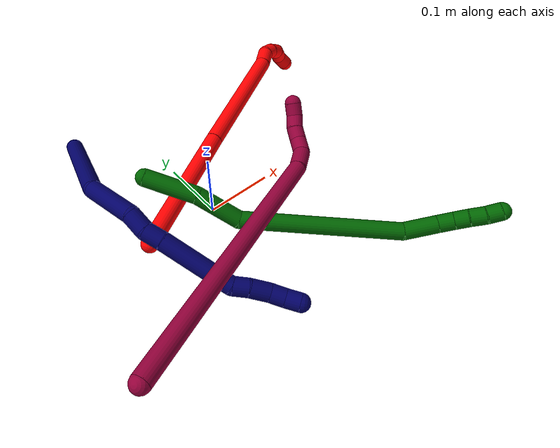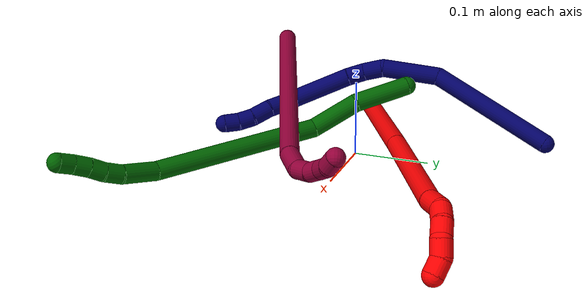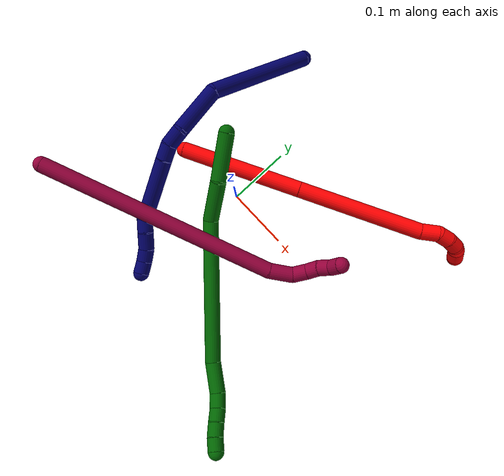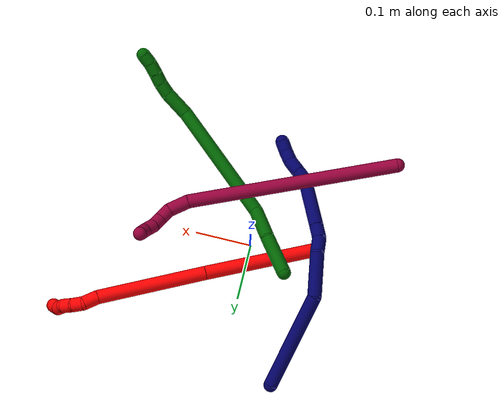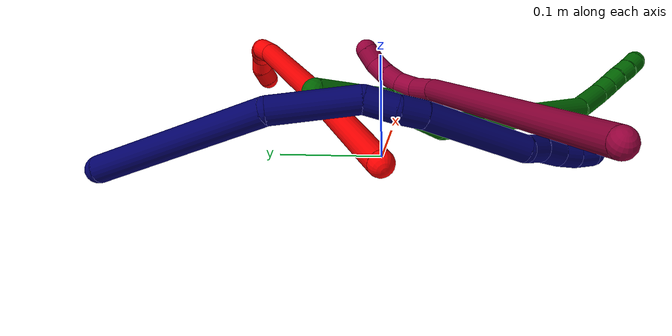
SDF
<sdf version="1.7">
 <world name="default">
  <model name="photoneo_s_sensor">
   <static>1</static>
   <pose>0 0 2 1.57079 1.57079 3.14159</pose>
   <link name="link">
    <inertial><mass>0.1</mass></inertial>
    <sensor name="sensor" type="depth">
     <update_rate>30</update_rate>
     <camera>
      <horizontal_fov>1.22</horizontal_fov>
      <image><width>1920</width><height>1200</height><format>B8G8R8</format></image>
      <clip><near>0.1</near><far>4</far></clip>
      <depth_camera><output>points</output></depth_camera>
     </camera>
     <plugin name="camera_plugin" filename="libgazebo_ros_depth_camera.so">
      <baseline>0.2</baseline>
      <alwaysOn>1</alwaysOn>
      <updateRate>0.0</updateRate>
      <cameraName>camera_ir</cameraName>
      <imageTopicName>/camera/color/image_raw</imageTopicName>
      <cameraInfoTopicName>/camera/color/camera_info</cameraInfoTopicName>
      <depthImageTopicName>/camera/depth/image_raw</depthImageTopicName>
      <depthImageCameraInfoTopicName>/camera/depth/camera_info</depthImageCameraInfoTopicName>
      <pointCloudTopicName>/camera/depth/points</pointCloudTopicName>
      <frameName>fr_optical</frameName>
      <pointCloudCutoff>0.1</pointCloudCutoff>
      <pointCloudCutoffMax>2.0</pointCloudCutoffMax>
      <distortionK1>0</distortionK1>
      <distortionK2>0</distortionK2>
      <distortionK3>0</distortionK3>
      <distortionT1>0</distortionT1>
      <distortionT2>0</distortionT2>
      <CxPrime>0</CxPrime>
      <Cx>0</Cx>
      <Cy>0</Cy>
      <focalLength>0</focalLength>
      <hackBaseline>0</hackBaseline>
     </plugin>
    </sensor>
   </link>
  </model>
  <model name="2">
   <static>0</static>
   <link name="2">
    <collision name="collision-cylinder-e_1_1_4">
     <pose>0.022266 0.009698 0.095081 -0.101648 0.228883 -0.011694</pose>
     <geometry><cylinder><radius>0.0125</radius><length>0.196268</length></cylinder></geometry>
     <surface>
      <friction><ode><mu>1.16</mu><mu2>1.16</mu2><slip1>0</slip1><slip2>0</slip2></ode></friction>
      <contact><ode><kp>1e+06</kp><kd>1</kd><max_vel>0</max_vel><min_depth>0.001</min_depth></ode></contact>
     </surface>
    </collision>
    <visual name="visual-cylinder-e_1_1_4">
     <pose>0.022266 0.009698 0.095081 -0.101648 0.228883 -0.011694</pose>
     <geometry><cylinder><radius>0.0125</radius><length>0.196268</length></cylinder></geometry>
     <material><ambient>1 0 0 1</ambient></material>
    </visual>
    <collision name="collision-cylinder-e_2_4_5">
     <pose>0.069897 0.030941 0.283435 -0.12314 0.263616 -0.016346</pose>
     <geometry><cylinder><radius>0.0125</radius><length>0.194695</length></cylinder></geometry>
     <surface>
      <friction><ode><mu>1.16</mu><mu2>1.16</mu2><slip1>0</slip1><slip2>0</slip2></ode></friction>
      <contact><ode><kp>1e+06</kp><kd>1</kd><max_vel>0</max_vel><min_depth>0.001</min_depth></ode></contact>
     </surface>
    </collision>
    <visual name="visual-cylinder-e_2_4_5">
     <pose>0.069897 0.030941 0.283435 -0.12314 0.263616 -0.016346</pose>
     <geometry><cylinder><radius>0.0125</radius><length>0.194695</length></cylinder></geometry>
     <material><ambient>1 0 0 1</ambient></material>
    </visual>
    <collision name="collision-cylinder-e_3_5_6">
     <pose>0.097374 0.046473 0.389643 -0.299104 0.154718 -0.023358</pose>
     <geometry><cylinder><radius>0.0125</radius><length>0.027398</length></cylinder></geometry>
     <surface>
      <friction><ode><mu>1.16</mu><mu2>1.16</mu2><slip1>0</slip1><slip2>0</slip2></ode></friction>
      <contact><ode><kp>1e+06</kp><kd>1</kd><max_vel>0</max_vel><min_depth>0.001</min_depth></ode></contact>
     </surface>
    </collision>
    <visual name="visual-cylinder-e_3_5_6">
     <pose>0.097374 0.046473 0.389643 -0.299104 0.154718 -0.023358</pose>
     <geometry><cylinder><radius>0.0125</radius><length>0.027398</length></cylinder></geometry>
     <material><ambient>1 0 0 1</ambient></material>
    </visual>
    <collision name="collision-cylinder-e_4_6_7">
     <pose>0.105711 0.051683 0.410718 -0.148908 0.647503 -0.050049</pose>
     <geometry><cylinder><radius>0.0125</radius><length>0.020641</length></cylinder></geometry>
     <surface>
      <friction><ode><mu>1.16</mu><mu2>1.16</mu2><slip1>0</slip1><slip2>0</slip2></ode></friction>
      <contact><ode><kp>1e+06</kp><kd>1</kd><max_vel>0</max_vel><min_depth>0.001</min_depth></ode></contact>
     </surface>
    </collision>
    <visual name="visual-cylinder-e_4_6_7">
     <pose>0.105711 0.051683 0.410718 -0.148908 0.647503 -0.050049</pose>
     <geometry><cylinder><radius>0.0125</radius><length>0.020641</length></cylinder></geometry>
     <material><ambient>1 0 0 1</ambient></material>
    </visual>
    <collision name="collision-cylinder-e_5_7_8">
     <pose>0.120106 0.053817 0.425001 -0.147547 0.92079 -0.073275</pose>
     <geometry><cylinder><radius>0.0125</radius><length>0.020525</length></cylinder></geometry>
     <surface>
      <friction><ode><mu>1.16</mu><mu2>1.16</mu2><slip1>0</slip1><slip2>0</slip2></ode></friction>
      <contact><ode><kp>1e+06</kp><kd>1</kd><max_vel>0</max_vel><min_depth>0.001</min_depth></ode></contact>
     </surface>
    </collision>
    <visual name="visual-cylinder-e_5_7_8">
     <pose>0.120106 0.053817 0.425001 -0.147547 0.92079 -0.073275</pose>
     <geometry><cylinder><radius>0.0125</radius><length>0.020525</length></cylinder></geometry>
     <material><ambient>1 0 0 1</ambient></material>
    </visual>
    <collision name="collision-cylinder-e_6_8_9">
     <pose>0.137885 0.057685 0.432807 -1.05823 1.23155 -0.784567</pose>
     <geometry><cylinder><radius>0.0125</radius><length>0.02038</length></cylinder></geometry>
     <surface>
      <friction><ode><mu>1.16</mu><mu2>1.16</mu2><slip1>0</slip1><slip2>0</slip2></ode></friction>
      <contact><ode><kp>1e+06</kp><kd>1</kd><max_vel>0</max_vel><min_depth>0.001</min_depth></ode></contact>
     </surface>
    </collision>
    <visual name="visual-cylinder-e_6_8_9">
     <pose>0.137885 0.057685 0.432807 -1.05823 1.23155 -0.784567</pose>
     <geometry><cylinder><radius>0.0125</radius><length>0.02038</length></cylinder></geometry>
     <material><ambient>1 0 0 1</ambient></material>
    </visual>
    <collision name="collision-cylinder-e_7_9_2">
     <pose>0.1574 0.059241 0.435386 0.991473 1.40359 0.857575</pose>
     <geometry><cylinder><radius>0.0125</radius><length>0.020094</length></cylinder></geometry>
     <surface>
      <friction><ode><mu>1.16</mu><mu2>1.16</mu2><slip1>0</slip1><slip2>0</slip2></ode></friction>
      <contact><ode><kp>1e+06</kp><kd>1</kd><max_vel>0</max_vel><min_depth>0.001</min_depth></ode></contact>
     </surface>
    </collision>
    <visual name="visual-cylinder-e_7_9_2">
     <pose>0.1574 0.059241 0.435386 0.991473 1.40359 0.857575</pose>
     <geometry><cylinder><radius>0.0125</radius><length>0.020094</length></cylinder></geometry>
     <material><ambient>1 0 0 1</ambient></material>
    </visual>
    <collision name="collision-sphere-2">
     <pose>0.167307 0.057842 0.436301 0 -0 0</pose>
     <geometry><sphere><radius>0.0125</radius></sphere></geometry>
     <surface>
      <friction><ode><mu>1.16</mu><mu2>1.16</mu2><slip1>0</slip1><slip2>0</slip2></ode></friction>
      <contact><ode><kp>1e+06</kp><kd>1</kd><max_vel>0</max_vel><min_depth>0.001</min_depth></ode></contact>
     </surface>
    </collision>
    <visual name="visual-sphere-2">
     <pose>0.167307 0.057842 0.436301 0 -0 0</pose>
     <geometry><sphere><radius>0.0125</radius></sphere></geometry>
     <material><ambient>1 0 0 1</ambient></material>
    </visual>
    <collision name="collision-sphere-9">
     <pose>0.147494 0.06064 0.43447 0 -0 0</pose>
     <geometry><sphere><radius>0.0125</radius></sphere></geometry>
     <surface>
      <friction><ode><mu>1.16</mu><mu2>1.16</mu2><slip1>0</slip1><slip2>0</slip2></ode></friction>
      <contact><ode><kp>1e+06</kp><kd>1</kd><max_vel>0</max_vel><min_depth>0.001</min_depth></ode></contact>
     </surface>
    </collision>
    <visual name="visual-sphere-9">
     <pose>0.147494 0.06064 0.43447 0 -0 0</pose>
     <geometry><sphere><radius>0.0125</radius></sphere></geometry>
     <material><ambient>1 0 0 1</ambient></material>
    </visual>
    <collision name="collision-sphere-4">
     <pose>0.044531 0.019397 0.190162 0 -0 0</pose>
     <geometry><sphere><radius>0.0125</radius></sphere></geometry>
     <surface>
      <friction><ode><mu>1.16</mu><mu2>1.16</mu2><slip1>0</slip1><slip2>0</slip2></ode></friction>
      <contact><ode><kp>1e+06</kp><kd>1</kd><max_vel>0</max_vel><min_depth>0.001</min_depth></ode></contact>
     </surface>
    </collision>
    <visual name="visual-sphere-4">
     <pose>0.044531 0.019397 0.190162 0 -0 0</pose>
     <geometry><sphere><radius>0.0125</radius></sphere></geometry>
     <material><ambient>1 0 0 1</ambient></material>
    </visual>
    <collision name="collision-sphere-1">
     <geometry><sphere><radius>0.0125</radius></sphere></geometry>
     <surface>
      <friction><ode><mu>1.16</mu><mu2>1.16</mu2><slip1>0</slip1><slip2>0</slip2></ode></friction>
      <contact><ode><kp>1e+06</kp><kd>1</kd><max_vel>0</max_vel><min_depth>0.001</min_depth></ode></contact>
     </surface>
    </collision>
    <visual name="visual-sphere-1">
     <geometry><sphere><radius>0.0125</radius></sphere></geometry>
     <material><ambient>1 0 0 1</ambient></material>
    </visual>
    <collision name="collision-sphere-8">
     <pose>0.128276 0.05473 0.431145 0 -0 0</pose>
     <geometry><sphere><radius>0.0125</radius></sphere></geometry>
     <surface>
      <friction><ode><mu>1.16</mu><mu2>1.16</mu2><slip1>0</slip1><slip2>0</slip2></ode></friction>
      <contact><ode><kp>1e+06</kp><kd>1</kd><max_vel>0</max_vel><min_depth>0.001</min_depth></ode></contact>
     </surface>
    </collision>
    <visual name="visual-sphere-8">
     <pose>0.128276 0.05473 0.431145 0 -0 0</pose>
     <geometry><sphere><radius>0.0125</radius></sphere></geometry>
     <material><ambient>1 0 0 1</ambient></material>
    </visual>
    <collision name="collision-sphere-5">
     <pose>0.095263 0.042485 0.376708 0 -0 0</pose>
     <geometry><sphere><radius>0.0125</radius></sphere></geometry>
     <surface>
      <friction><ode><mu>1.16</mu><mu2>1.16</mu2><slip1>0</slip1><slip2>0</slip2></ode></friction>
      <contact><ode><kp>1e+06</kp><kd>1</kd><max_vel>0</max_vel><min_depth>0.001</min_depth></ode></contact>
     </surface>
    </collision>
    <visual name="visual-sphere-5">
     <pose>0.095263 0.042485 0.376708 0 -0 0</pose>
     <geometry><sphere><radius>0.0125</radius></sphere></geometry>
     <material><ambient>1 0 0 1</ambient></material>
    </visual>
    <collision name="collision-sphere-6">
     <pose>0.099486 0.050462 0.402577 0 -0 0</pose>
     <geometry><sphere><radius>0.0125</radius></sphere></geometry>
     <surface>
      <friction><ode><mu>1.16</mu><mu2>1.16</mu2><slip1>0</slip1><slip2>0</slip2></ode></friction>
      <contact><ode><kp>1e+06</kp><kd>1</kd><max_vel>0</max_vel><min_depth>0.001</min_depth></ode></contact>
     </surface>
    </collision>
    <visual name="visual-sphere-6">
     <pose>0.099486 0.050462 0.402577 0 -0 0</pose>
     <geometry><sphere><radius>0.0125</radius></sphere></geometry>
     <material><ambient>1 0 0 1</ambient></material>
    </visual>
    <collision name="collision-sphere-7">
     <pose>0.111936 0.052904 0.418858 0 -0 0</pose>
     <geometry><sphere><radius>0.0125</radius></sphere></geometry>
     <surface>
      <friction><ode><mu>1.16</mu><mu2>1.16</mu2><slip1>0</slip1><slip2>0</slip2></ode></friction>
      <contact><ode><kp>1e+06</kp><kd>1</kd><max_vel>0</max_vel><min_depth>0.001</min_depth></ode></contact>
     </surface>
    </collision>
    <visual name="visual-sphere-7">
     <pose>0.111936 0.052904 0.418858 0 -0 0</pose>
     <geometry><sphere><radius>0.0125</radius></sphere></geometry>
     <material><ambient>1 0 0 1</ambient></material>
    </visual>
    <inertial>
     <pose>0.062533 0.027476 0.23858 0 -0 0</pose>
     <mass>0.5</mass>
     <inertia>
      <ixx>0.001223</ixx>
      <ixy>0</ixy>
      <ixz>0</ixz>
      <iyy>0.001248</iyy>
      <iyz>0</iyz>
      <izz>-0.000416</izz>
     </inertia>
    </inertial>
   </link>
   <pose>-0.110003 -0.011605 0.027673 -0.76998 1.07147 -0.381204</pose>
  </model>
  <model name="6">
   <static>0</static>
   <link name="6">
    <collision name="collision-cylinder-e_1_1_4">
     <pose>0.014363 -0.032519 0.01059 1.25596 0.397594 0.290469</pose>
     <geometry><cylinder><radius>0.0125</radius><length>0.074187</length></cylinder></geometry>
     <surface>
      <friction><ode><mu>1.16</mu><mu2>1.16</mu2><slip1>0</slip1><slip2>0</slip2></ode></friction>
      <contact><ode><kp>1e+06</kp><kd>1</kd><max_vel>0</max_vel><min_depth>0.001</min_depth></ode></contact>
     </surface>
    </collision>
    <visual name="visual-cylinder-e_1_1_4">
     <pose>0.014363 -0.032519 0.01059 1.25596 0.397594 0.290469</pose>
     <geometry><cylinder><radius>0.0125</radius><length>0.074187</length></cylinder></geometry>
     <material><ambient>0 0.392157 0.003922 1</ambient></material>
    </visual>
    <collision name="collision-cylinder-e_2_4_5">
     <pose>0.040577 -0.096104 0.02217 1.53896 0.364277 0.3531</pose>
     <geometry><cylinder><radius>0.0125</radius><length>0.066529</length></cylinder></geometry>
     <surface>
      <friction><ode><mu>1.16</mu><mu2>1.16</mu2><slip1>0</slip1><slip2>0</slip2></ode></friction>
      <contact><ode><kp>1e+06</kp><kd>1</kd><max_vel>0</max_vel><min_depth>0.001</min_depth></ode></contact>
     </surface>
    </collision>
    <visual name="visual-cylinder-e_2_4_5">
     <pose>0.040577 -0.096104 0.02217 1.53896 0.364277 0.3531</pose>
     <geometry><cylinder><radius>0.0125</radius><length>0.066529</length></cylinder></geometry>
     <material><ambient>0 0.392157 0.003922 1</ambient></material>
    </visual>
    <collision name="collision-cylinder-e_3_5_6">
     <pose>0.113401 -0.20961 0.070871 1.04615 0.569409 0.334369</pose>
     <geometry><cylinder><radius>0.0125</radius><length>0.22619</length></cylinder></geometry>
     <surface>
      <friction><ode><mu>1.16</mu><mu2>1.16</mu2><slip1>0</slip1><slip2>0</slip2></ode></friction>
      <contact><ode><kp>1e+06</kp><kd>1</kd><max_vel>0</max_vel><min_depth>0.001</min_depth></ode></contact>
     </surface>
    </collision>
    <visual name="visual-cylinder-e_3_5_6">
     <pose>0.113401 -0.20961 0.070871 1.04615 0.569409 0.334369</pose>
     <geometry><cylinder><radius>0.0125</radius><length>0.22619</length></cylinder></geometry>
     <material><ambient>0 0.392157 0.003922 1</ambient></material>
    </visual>
    <collision name="collision-cylinder-e_4_6_7">
     <pose>0.189177 -0.304544 0.133282 0.7045 0.654467 0.248258</pose>
     <geometry><cylinder><radius>0.0125</radius><length>0.048633</length></cylinder></geometry>
     <surface>
      <friction><ode><mu>1.16</mu><mu2>1.16</mu2><slip1>0</slip1><slip2>0</slip2></ode></friction>
      <contact><ode><kp>1e+06</kp><kd>1</kd><max_vel>0</max_vel><min_depth>0.001</min_depth></ode></contact>
     </surface>
    </collision>
    <visual name="visual-cylinder-e_4_6_7">
     <pose>0.189177 -0.304544 0.133282 0.7045 0.654467 0.248258</pose>
     <geometry><cylinder><radius>0.0125</radius><length>0.048633</length></cylinder></geometry>
     <material><ambient>0 0.392157 0.003922 1</ambient></material>
    </visual>
    <collision name="collision-cylinder-e_5_7_8">
     <pose>0.209143 -0.322739 0.156675 0.58041 0.460978 0.139927</pose>
     <geometry><cylinder><radius>0.0125</radius><length>0.023215</length></cylinder></geometry>
     <surface>
      <friction><ode><mu>1.16</mu><mu2>1.16</mu2><slip1>0</slip1><slip2>0</slip2></ode></friction>
      <contact><ode><kp>1e+06</kp><kd>1</kd><max_vel>0</max_vel><min_depth>0.001</min_depth></ode></contact>
     </surface>
    </collision>
    <visual name="visual-cylinder-e_5_7_8">
     <pose>0.209143 -0.322739 0.156675 0.58041 0.460978 0.139927</pose>
     <geometry><cylinder><radius>0.0125</radius><length>0.023215</length></cylinder></geometry>
     <material><ambient>0 0.392157 0.003922 1</ambient></material>
    </visual>
    <collision name="collision-cylinder-e_6_8_9">
     <pose>0.217332 -0.333058 0.17377 0.502626 0.305756 0.079076</pose>
     <geometry><cylinder><radius>0.0125</radius><length>0.020108</length></cylinder></geometry>
     <surface>
      <friction><ode><mu>1.16</mu><mu2>1.16</mu2><slip1>0</slip1><slip2>0</slip2></ode></friction>
      <contact><ode><kp>1e+06</kp><kd>1</kd><max_vel>0</max_vel><min_depth>0.001</min_depth></ode></contact>
     </surface>
    </collision>
    <visual name="visual-cylinder-e_6_8_9">
     <pose>0.217332 -0.333058 0.17377 0.502626 0.305756 0.079076</pose>
     <geometry><cylinder><radius>0.0125</radius><length>0.020108</length></cylinder></geometry>
     <material><ambient>0 0.392157 0.003922 1</ambient></material>
    </visual>
    <collision name="collision-cylinder-e_7_9_10">
     <pose>0.224198 -0.343114 0.190316 0.588619 0.373707 0.114487</pose>
     <geometry><cylinder><radius>0.0125</radius><length>0.021037</length></cylinder></geometry>
     <surface>
      <friction><ode><mu>1.16</mu><mu2>1.16</mu2><slip1>0</slip1><slip2>0</slip2></ode></friction>
      <contact><ode><kp>1e+06</kp><kd>1</kd><max_vel>0</max_vel><min_depth>0.001</min_depth></ode></contact>
     </surface>
    </collision>
    <visual name="visual-cylinder-e_7_9_10">
     <pose>0.224198 -0.343114 0.190316 0.588619 0.373707 0.114487</pose>
     <geometry><cylinder><radius>0.0125</radius><length>0.021037</length></cylinder></geometry>
     <material><ambient>0 0.392157 0.003922 1</ambient></material>
    </visual>
    <collision name="collision-cylinder-e_8_10_2">
     <pose>0.233088 -0.353083 0.205876 0.548613 0.526414 0.151361</pose>
     <geometry><cylinder><radius>0.0125</radius><length>0.020102</length></cylinder></geometry>
     <surface>
      <friction><ode><mu>1.16</mu><mu2>1.16</mu2><slip1>0</slip1><slip2>0</slip2></ode></friction>
      <contact><ode><kp>1e+06</kp><kd>1</kd><max_vel>0</max_vel><min_depth>0.001</min_depth></ode></contact>
     </surface>
    </collision>
    <visual name="visual-cylinder-e_8_10_2">
     <pose>0.233088 -0.353083 0.205876 0.548613 0.526414 0.151361</pose>
     <geometry><cylinder><radius>0.0125</radius><length>0.020102</length></cylinder></geometry>
     <material><ambient>0 0.392157 0.003922 1</ambient></material>
    </visual>
    <collision name="collision-sphere-2">
     <pose>0.238138 -0.357615 0.21329 0 -0 0</pose>
     <geometry><sphere><radius>0.0125</radius></sphere></geometry>
     <surface>
      <friction><ode><mu>1.16</mu><mu2>1.16</mu2><slip1>0</slip1><slip2>0</slip2></ode></friction>
      <contact><ode><kp>1e+06</kp><kd>1</kd><max_vel>0</max_vel><min_depth>0.001</min_depth></ode></contact>
     </surface>
    </collision>
    <visual name="visual-sphere-2">
     <pose>0.238138 -0.357615 0.21329 0 -0 0</pose>
     <geometry><sphere><radius>0.0125</radius></sphere></geometry>
     <material><ambient>0 0.392157 0.003922 1</ambient></material>
    </visual>
    <collision name="collision-sphere-10">
     <pose>0.228038 -0.348551 0.198461 0 -0 0</pose>
     <geometry><sphere><radius>0.0125</radius></sphere></geometry>
     <surface>
      <friction><ode><mu>1.16</mu><mu2>1.16</mu2><slip1>0</slip1><slip2>0</slip2></ode></friction>
      <contact><ode><kp>1e+06</kp><kd>1</kd><max_vel>0</max_vel><min_depth>0.001</min_depth></ode></contact>
     </surface>
    </collision>
    <visual name="visual-sphere-10">
     <pose>0.228038 -0.348551 0.198461 0 -0 0</pose>
     <geometry><sphere><radius>0.0125</radius></sphere></geometry>
     <material><ambient>0 0.392157 0.003922 1</ambient></material>
    </visual>
    <collision name="collision-sphere-9">
     <pose>0.220359 -0.337677 0.182172 0 -0 0</pose>
     <geometry><sphere><radius>0.0125</radius></sphere></geometry>
     <surface>
      <friction><ode><mu>1.16</mu><mu2>1.16</mu2><slip1>0</slip1><slip2>0</slip2></ode></friction>
      <contact><ode><kp>1e+06</kp><kd>1</kd><max_vel>0</max_vel><min_depth>0.001</min_depth></ode></contact>
     </surface>
    </collision>
    <visual name="visual-sphere-9">
     <pose>0.220359 -0.337677 0.182172 0 -0 0</pose>
     <geometry><sphere><radius>0.0125</radius></sphere></geometry>
     <material><ambient>0 0.392157 0.003922 1</ambient></material>
    </visual>
    <collision name="collision-sphere-4">
     <pose>0.028725 -0.065038 0.021181 0 -0 0</pose>
     <geometry><sphere><radius>0.0125</radius></sphere></geometry>
     <surface>
      <friction><ode><mu>1.16</mu><mu2>1.16</mu2><slip1>0</slip1><slip2>0</slip2></ode></friction>
      <contact><ode><kp>1e+06</kp><kd>1</kd><max_vel>0</max_vel><min_depth>0.001</min_depth></ode></contact>
     </surface>
    </collision>
    <visual name="visual-sphere-4">
     <pose>0.028725 -0.065038 0.021181 0 -0 0</pose>
     <geometry><sphere><radius>0.0125</radius></sphere></geometry>
     <material><ambient>0 0.392157 0.003922 1</ambient></material>
    </visual>
    <collision name="collision-sphere-1">
     <geometry><sphere><radius>0.0125</radius></sphere></geometry>
     <surface>
      <friction><ode><mu>1.16</mu><mu2>1.16</mu2><slip1>0</slip1><slip2>0</slip2></ode></friction>
      <contact><ode><kp>1e+06</kp><kd>1</kd><max_vel>0</max_vel><min_depth>0.001</min_depth></ode></contact>
     </surface>
    </collision>
    <visual name="visual-sphere-1">
     <geometry><sphere><radius>0.0125</radius></sphere></geometry>
     <material><ambient>0 0.392157 0.003922 1</ambient></material>
    </visual>
    <collision name="collision-sphere-8">
     <pose>0.214306 -0.32844 0.165368 0 -0 0</pose>
     <geometry><sphere><radius>0.0125</radius></sphere></geometry>
     <surface>
      <friction><ode><mu>1.16</mu><mu2>1.16</mu2><slip1>0</slip1><slip2>0</slip2></ode></friction>
      <contact><ode><kp>1e+06</kp><kd>1</kd><max_vel>0</max_vel><min_depth>0.001</min_depth></ode></contact>
     </surface>
    </collision>
    <visual name="visual-sphere-8">
     <pose>0.214306 -0.32844 0.165368 0 -0 0</pose>
     <geometry><sphere><radius>0.0125</radius></sphere></geometry>
     <material><ambient>0 0.392157 0.003922 1</ambient></material>
    </visual>
    <collision name="collision-sphere-5">
     <pose>0.052428 -0.12717 0.023159 0 -0 0</pose>
     <geometry><sphere><radius>0.0125</radius></sphere></geometry>
     <surface>
      <friction><ode><mu>1.16</mu><mu2>1.16</mu2><slip1>0</slip1><slip2>0</slip2></ode></friction>
      <contact><ode><kp>1e+06</kp><kd>1</kd><max_vel>0</max_vel><min_depth>0.001</min_depth></ode></contact>
     </surface>
    </collision>
    <visual name="visual-sphere-5">
     <pose>0.052428 -0.12717 0.023159 0 -0 0</pose>
     <geometry><sphere><radius>0.0125</radius></sphere></geometry>
     <material><ambient>0 0.392157 0.003922 1</ambient></material>
    </visual>
    <collision name="collision-sphere-6">
     <pose>0.174375 -0.292049 0.118583 0 -0 0</pose>
     <geometry><sphere><radius>0.0125</radius></sphere></geometry>
     <surface>
      <friction><ode><mu>1.16</mu><mu2>1.16</mu2><slip1>0</slip1><slip2>0</slip2></ode></friction>
      <contact><ode><kp>1e+06</kp><kd>1</kd><max_vel>0</max_vel><min_depth>0.001</min_depth></ode></contact>
     </surface>
    </collision>
    <visual name="visual-sphere-6">
     <pose>0.174375 -0.292049 0.118583 0 -0 0</pose>
     <geometry><sphere><radius>0.0125</radius></sphere></geometry>
     <material><ambient>0 0.392157 0.003922 1</ambient></material>
    </visual>
    <collision name="collision-sphere-7">
     <pose>0.203979 -0.317038 0.147982 0 -0 0</pose>
     <geometry><sphere><radius>0.0125</radius></sphere></geometry>
     <surface>
      <friction><ode><mu>1.16</mu><mu2>1.16</mu2><slip1>0</slip1><slip2>0</slip2></ode></friction>
      <contact><ode><kp>1e+06</kp><kd>1</kd><max_vel>0</max_vel><min_depth>0.001</min_depth></ode></contact>
     </surface>
    </collision>
    <visual name="visual-sphere-7">
     <pose>0.203979 -0.317038 0.147982 0 -0 0</pose>
     <geometry><sphere><radius>0.0125</radius></sphere></geometry>
     <material><ambient>0 0.392157 0.003922 1</ambient></material>
    </visual>
    <inertial>
     <pose>0.114485 -0.199067 0.080092 0 -0 0</pose>
     <mass>0.5</mass>
     <inertia>
      <ixx>0.001154</ixx>
      <ixy>0</ixy>
      <ixz>0</ixz>
      <iyy>0.000906</iyy>
      <iyz>0</iyz>
      <izz>0.000235</izz>
     </inertia>
    </inertial>
   </link>
   <pose>-0.071181 0.048959 0.07907 0.486832 0.210651 0.270034</pose>
  </model>
  <model name="7">
   <static>0</static>
   <link name="7">
    <collision name="collision-cylinder-e_1_1_4">
     <pose>0.013823 -0.075411 0.044778 1.03495 0.156321 0.089103</pose>
     <geometry><cylinder><radius>0.0125</radius><length>0.177572</length></cylinder></geometry>
     <surface>
      <friction><ode><mu>1.16</mu><mu2>1.16</mu2><slip1>0</slip1><slip2>0</slip2></ode></friction>
      <contact><ode><kp>1e+06</kp><kd>1</kd><max_vel>0</max_vel><min_depth>0.001</min_depth></ode></contact>
     </surface>
    </collision>
    <visual name="visual-cylinder-e_1_1_4">
     <pose>0.013823 -0.075411 0.044778 1.03495 0.156321 0.089103</pose>
     <geometry><cylinder><radius>0.0125</radius><length>0.177572</length></cylinder></geometry>
     <material><ambient>0.003922 0 0.403922 1</ambient></material>
    </visual>
    <collision name="collision-cylinder-e_2_4_5">
     <pose>0.035176 -0.170772 0.122318 0.546984 0.19385 0.054537</pose>
     <geometry><cylinder><radius>0.0125</radius><length>0.078179</length></cylinder></geometry>
     <surface>
      <friction><ode><mu>1.16</mu><mu2>1.16</mu2><slip1>0</slip1><slip2>0</slip2></ode></friction>
      <contact><ode><kp>1e+06</kp><kd>1</kd><max_vel>0</max_vel><min_depth>0.001</min_depth></ode></contact>
     </surface>
    </collision>
    <visual name="visual-cylinder-e_2_4_5">
     <pose>0.035176 -0.170772 0.122318 0.546984 0.19385 0.054537</pose>
     <geometry><cylinder><radius>0.0125</radius><length>0.078179</length></cylinder></geometry>
     <material><ambient>0.003922 0 0.403922 1</ambient></material>
    </visual>
    <collision name="collision-cylinder-e_3_5_6">
     <pose>0.05021 -0.195123 0.166325 0.373019 0.556004 0.107605</pose>
     <geometry><cylinder><radius>0.0125</radius><length>0.028438</length></cylinder></geometry>
     <surface>
      <friction><ode><mu>1.16</mu><mu2>1.16</mu2><slip1>0</slip1><slip2>0</slip2></ode></friction>
      <contact><ode><kp>1e+06</kp><kd>1</kd><max_vel>0</max_vel><min_depth>0.001</min_depth></ode></contact>
     </surface>
    </collision>
    <visual name="visual-cylinder-e_3_5_6">
     <pose>0.05021 -0.195123 0.166325 0.373019 0.556004 0.107605</pose>
     <geometry><cylinder><radius>0.0125</radius><length>0.028438</length></cylinder></geometry>
     <material><ambient>0.003922 0 0.403922 1</ambient></material>
    </visual>
    <collision name="collision-cylinder-e_4_6_7">
     <pose>0.061878 -0.200582 0.189229 0.090422 0.341737 0.015613</pose>
     <geometry><cylinder><radius>0.0125</radius><length>0.024846</length></cylinder></geometry>
     <surface>
      <friction><ode><mu>1.16</mu><mu2>1.16</mu2><slip1>0</slip1><slip2>0</slip2></ode></friction>
      <contact><ode><kp>1e+06</kp><kd>1</kd><max_vel>0</max_vel><min_depth>0.001</min_depth></ode></contact>
     </surface>
    </collision>
    <visual name="visual-cylinder-e_4_6_7">
     <pose>0.061878 -0.200582 0.189229 0.090422 0.341737 0.015613</pose>
     <geometry><cylinder><radius>0.0125</radius><length>0.024846</length></cylinder></geometry>
     <material><ambient>0.003922 0 0.403922 1</ambient></material>
    </visual>
    <collision name="collision-cylinder-e_5_7_8">
     <pose>0.086623 -0.20267 0.247147 0.022303 0.418506 0.004736</pose>
     <geometry><cylinder><radius>0.0125</radius><length>0.101287</length></cylinder></geometry>
     <surface>
      <friction><ode><mu>1.16</mu><mu2>1.16</mu2><slip1>0</slip1><slip2>0</slip2></ode></friction>
      <contact><ode><kp>1e+06</kp><kd>1</kd><max_vel>0</max_vel><min_depth>0.001</min_depth></ode></contact>
     </surface>
    </collision>
    <visual name="visual-cylinder-e_5_7_8">
     <pose>0.086623 -0.20267 0.247147 0.022303 0.418506 0.004736</pose>
     <geometry><cylinder><radius>0.0125</radius><length>0.101287</length></cylinder></geometry>
     <material><ambient>0.003922 0 0.403922 1</ambient></material>
    </visual>
    <collision name="collision-cylinder-e_6_8_9">
     <pose>0.107199 -0.202023 0.303834 -0.159672 -0.000524 4.2e-05</pose>
     <geometry><cylinder><radius>0.0125</radius><length>0.021121</length></cylinder></geometry>
     <surface>
      <friction><ode><mu>1.16</mu><mu2>1.16</mu2><slip1>0</slip1><slip2>0</slip2></ode></friction>
      <contact><ode><kp>1e+06</kp><kd>1</kd><max_vel>0</max_vel><min_depth>0.001</min_depth></ode></contact>
     </surface>
    </collision>
    <visual name="visual-cylinder-e_6_8_9">
     <pose>0.107199 -0.202023 0.303834 -0.159672 -0.000524 4.2e-05</pose>
     <geometry><cylinder><radius>0.0125</radius><length>0.021121</length></cylinder></geometry>
     <material><ambient>0.003922 0 0.403922 1</ambient></material>
    </visual>
    <collision name="collision-cylinder-e_7_9_10">
     <pose>0.109178 -0.197127 0.327421 -0.239768 0.145454 -0.017552</pose>
     <geometry><cylinder><radius>0.0125</radius><length>0.027385</length></cylinder></geometry>
     <surface>
      <friction><ode><mu>1.16</mu><mu2>1.16</mu2><slip1>0</slip1><slip2>0</slip2></ode></friction>
      <contact><ode><kp>1e+06</kp><kd>1</kd><max_vel>0</max_vel><min_depth>0.001</min_depth></ode></contact>
     </surface>
    </collision>
    <visual name="visual-cylinder-e_7_9_10">
     <pose>0.109178 -0.197127 0.327421 -0.239768 0.145454 -0.017552</pose>
     <geometry><cylinder><radius>0.0125</radius><length>0.027385</length></cylinder></geometry>
     <material><ambient>0.003922 0 0.403922 1</ambient></material>
    </visual>
    <collision name="collision-cylinder-e_8_10_11">
     <pose>0.113027 -0.193764 0.350896 -0.01407 0.178822 -0.001261</pose>
     <geometry><cylinder><radius>0.0125</radius><length>0.020967</length></cylinder></geometry>
     <surface>
      <friction><ode><mu>1.16</mu><mu2>1.16</mu2><slip1>0</slip1><slip2>0</slip2></ode></friction>
      <contact><ode><kp>1e+06</kp><kd>1</kd><max_vel>0</max_vel><min_depth>0.001</min_depth></ode></contact>
     </surface>
    </collision>
    <visual name="visual-cylinder-e_8_10_11">
     <pose>0.113027 -0.193764 0.350896 -0.01407 0.178822 -0.001261</pose>
     <geometry><cylinder><radius>0.0125</radius><length>0.020967</length></cylinder></geometry>
     <material><ambient>0.003922 0 0.403922 1</ambient></material>
    </visual>
    <collision name="collision-cylinder-e_9_11_2">
     <pose>0.115587 -0.194952 0.371202 0.132594 0.068901 0.004576</pose>
     <geometry><cylinder><radius>0.0125</radius><length>0.020205</length></cylinder></geometry>
     <surface>
      <friction><ode><mu>1.16</mu><mu2>1.16</mu2><slip1>0</slip1><slip2>0</slip2></ode></friction>
      <contact><ode><kp>1e+06</kp><kd>1</kd><max_vel>0</max_vel><min_depth>0.001</min_depth></ode></contact>
     </surface>
    </collision>
    <visual name="visual-cylinder-e_9_11_2">
     <pose>0.115587 -0.194952 0.371202 0.132594 0.068901 0.004576</pose>
     <geometry><cylinder><radius>0.0125</radius><length>0.020205</length></cylinder></geometry>
     <material><ambient>0.003922 0 0.403922 1</ambient></material>
    </visual>
    <collision name="collision-sphere-2">
     <pose>0.116283 -0.196284 0.381192 0 -0 0</pose>
     <geometry><sphere><radius>0.0125</radius></sphere></geometry>
     <surface>
      <friction><ode><mu>1.16</mu><mu2>1.16</mu2><slip1>0</slip1><slip2>0</slip2></ode></friction>
      <contact><ode><kp>1e+06</kp><kd>1</kd><max_vel>0</max_vel><min_depth>0.001</min_depth></ode></contact>
     </surface>
    </collision>
    <visual name="visual-sphere-2">
     <pose>0.116283 -0.196284 0.381192 0 -0 0</pose>
     <geometry><sphere><radius>0.0125</radius></sphere></geometry>
     <material><ambient>0.003922 0 0.403922 1</ambient></material>
    </visual>
    <collision name="collision-sphere-11">
     <pose>0.114892 -0.193619 0.361212 0 -0 0</pose>
     <geometry><sphere><radius>0.0125</radius></sphere></geometry>
     <surface>
      <friction><ode><mu>1.16</mu><mu2>1.16</mu2><slip1>0</slip1><slip2>0</slip2></ode></friction>
      <contact><ode><kp>1e+06</kp><kd>1</kd><max_vel>0</max_vel><min_depth>0.001</min_depth></ode></contact>
     </surface>
    </collision>
    <visual name="visual-sphere-11">
     <pose>0.114892 -0.193619 0.361212 0 -0 0</pose>
     <geometry><sphere><radius>0.0125</radius></sphere></geometry>
     <material><ambient>0.003922 0 0.403922 1</ambient></material>
    </visual>
    <collision name="collision-sphere-10">
     <pose>0.111162 -0.19391 0.340581 0 -0 0</pose>
     <geometry><sphere><radius>0.0125</radius></sphere></geometry>
     <surface>
      <friction><ode><mu>1.16</mu><mu2>1.16</mu2><slip1>0</slip1><slip2>0</slip2></ode></friction>
      <contact><ode><kp>1e+06</kp><kd>1</kd><max_vel>0</max_vel><min_depth>0.001</min_depth></ode></contact>
     </surface>
    </collision>
    <visual name="visual-sphere-10">
     <pose>0.111162 -0.19391 0.340581 0 -0 0</pose>
     <geometry><sphere><radius>0.0125</radius></sphere></geometry>
     <material><ambient>0.003922 0 0.403922 1</ambient></material>
    </visual>
    <collision name="collision-sphere-9">
     <pose>0.107193 -0.200344 0.314261 0 -0 0</pose>
     <geometry><sphere><radius>0.0125</radius></sphere></geometry>
     <surface>
      <friction><ode><mu>1.16</mu><mu2>1.16</mu2><slip1>0</slip1><slip2>0</slip2></ode></friction>
      <contact><ode><kp>1e+06</kp><kd>1</kd><max_vel>0</max_vel><min_depth>0.001</min_depth></ode></contact>
     </surface>
    </collision>
    <visual name="visual-sphere-9">
     <pose>0.107193 -0.200344 0.314261 0 -0 0</pose>
     <geometry><sphere><radius>0.0125</radius></sphere></geometry>
     <material><ambient>0.003922 0 0.403922 1</ambient></material>
    </visual>
    <collision name="collision-sphere-4">
     <pose>0.027645 -0.150822 0.089557 0 -0 0</pose>
     <geometry><sphere><radius>0.0125</radius></sphere></geometry>
     <surface>
      <friction><ode><mu>1.16</mu><mu2>1.16</mu2><slip1>0</slip1><slip2>0</slip2></ode></friction>
      <contact><ode><kp>1e+06</kp><kd>1</kd><max_vel>0</max_vel><min_depth>0.001</min_depth></ode></contact>
     </surface>
    </collision>
    <visual name="visual-sphere-4">
     <pose>0.027645 -0.150822 0.089557 0 -0 0</pose>
     <geometry><sphere><radius>0.0125</radius></sphere></geometry>
     <material><ambient>0.003922 0 0.403922 1</ambient></material>
    </visual>
    <collision name="collision-sphere-1">
     <geometry><sphere><radius>0.0125</radius></sphere></geometry>
     <surface>
      <friction><ode><mu>1.16</mu><mu2>1.16</mu2><slip1>0</slip1><slip2>0</slip2></ode></friction>
      <contact><ode><kp>1e+06</kp><kd>1</kd><max_vel>0</max_vel><min_depth>0.001</min_depth></ode></contact>
     </surface>
    </collision>
    <visual name="visual-sphere-1">
     <geometry><sphere><radius>0.0125</radius></sphere></geometry>
     <material><ambient>0.003922 0 0.403922 1</ambient></material>
    </visual>
    <collision name="collision-sphere-8">
     <pose>0.107204 -0.203702 0.293408 0 -0 0</pose>
     <geometry><sphere><radius>0.0125</radius></sphere></geometry>
     <surface>
      <friction><ode><mu>1.16</mu><mu2>1.16</mu2><slip1>0</slip1><slip2>0</slip2></ode></friction>
      <contact><ode><kp>1e+06</kp><kd>1</kd><max_vel>0</max_vel><min_depth>0.001</min_depth></ode></contact>
     </surface>
    </collision>
    <visual name="visual-sphere-8">
     <pose>0.107204 -0.203702 0.293408 0 -0 0</pose>
     <geometry><sphere><radius>0.0125</radius></sphere></geometry>
     <material><ambient>0.003922 0 0.403922 1</ambient></material>
    </visual>
    <collision name="collision-sphere-5">
     <pose>0.042706 -0.190722 0.155078 0 -0 0</pose>
     <geometry><sphere><radius>0.0125</radius></sphere></geometry>
     <surface>
      <friction><ode><mu>1.16</mu><mu2>1.16</mu2><slip1>0</slip1><slip2>0</slip2></ode></friction>
      <contact><ode><kp>1e+06</kp><kd>1</kd><max_vel>0</max_vel><min_depth>0.001</min_depth></ode></contact>
     </surface>
    </collision>
    <visual name="visual-sphere-5">
     <pose>0.042706 -0.190722 0.155078 0 -0 0</pose>
     <geometry><sphere><radius>0.0125</radius></sphere></geometry>
     <material><ambient>0.003922 0 0.403922 1</ambient></material>
    </visual>
    <collision name="collision-sphere-6">
     <pose>0.057715 -0.199525 0.177572 0 -0 0</pose>
     <geometry><sphere><radius>0.0125</radius></sphere></geometry>
     <surface>
      <friction><ode><mu>1.16</mu><mu2>1.16</mu2><slip1>0</slip1><slip2>0</slip2></ode></friction>
      <contact><ode><kp>1e+06</kp><kd>1</kd><max_vel>0</max_vel><min_depth>0.001</min_depth></ode></contact>
     </surface>
    </collision>
    <visual name="visual-sphere-6">
     <pose>0.057715 -0.199525 0.177572 0 -0 0</pose>
     <geometry><sphere><radius>0.0125</radius></sphere></geometry>
     <material><ambient>0.003922 0 0.403922 1</ambient></material>
    </visual>
    <collision name="collision-sphere-7">
     <pose>0.066042 -0.201638 0.200885 0 -0 0</pose>
     <geometry><sphere><radius>0.0125</radius></sphere></geometry>
     <surface>
      <friction><ode><mu>1.16</mu><mu2>1.16</mu2><slip1>0</slip1><slip2>0</slip2></ode></friction>
      <contact><ode><kp>1e+06</kp><kd>1</kd><max_vel>0</max_vel><min_depth>0.001</min_depth></ode></contact>
     </surface>
    </collision>
    <visual name="visual-sphere-7">
     <pose>0.066042 -0.201638 0.200885 0 -0 0</pose>
     <geometry><sphere><radius>0.0125</radius></sphere></geometry>
     <material><ambient>0.003922 0 0.403922 1</ambient></material>
    </visual>
    <inertial>
     <pose>0.053806 -0.150938 0.164439 0 -0 0</pose>
     <mass>0.5</mass>
     <inertia>
      <ixx>0.000656</ixx>
      <ixy>0</ixy>
      <ixz>0</ixz>
      <iyy>0.000415</iyy>
      <iyz>0</iyz>
      <izz>0.000334</izz>
     </inertia>
    </inertial>
   </link>
   <pose>-0.093436 0.238157 0.011731 -1.69893 0.894919 -2.5251</pose>
  </model>
  <model name="8">
   <static>0</static>
   <link name="8">
    <collision name="collision-cylinder-e_1_1_4">
     <pose>0.129512 0.032097 -0.134025 -2.90653 0.754348 -2.56224</pose>
     <geometry><cylinder><radius>0.0125</radius><length>0.378239</length></cylinder></geometry>
     <surface>
      <friction><ode><mu>1.16</mu><mu2>1.16</mu2><slip1>0</slip1><slip2>0</slip2></ode></friction>
      <contact><ode><kp>1e+06</kp><kd>1</kd><max_vel>0</max_vel><min_depth>0.001</min_depth></ode></contact>
     </surface>
    </collision>
    <visual name="visual-cylinder-e_1_1_4">
     <pose>0.129512 0.032097 -0.134025 -2.90653 0.754348 -2.56224</pose>
     <geometry><cylinder><radius>0.0125</radius><length>0.378239</length></cylinder></geometry>
     <material><ambient>0.584314 0 0.227451 1</ambient></material>
    </visual>
    <collision name="collision-cylinder-e_2_4_5">
     <pose>0.270472 0.071986 -0.280814 -2.59352 0.653392 -1.75649</pose>
     <geometry><cylinder><radius>0.0125</radius><length>0.037667</length></cylinder></geometry>
     <surface>
      <friction><ode><mu>1.16</mu><mu2>1.16</mu2><slip1>0</slip1><slip2>0</slip2></ode></friction>
      <contact><ode><kp>1e+06</kp><kd>1</kd><max_vel>0</max_vel><min_depth>0.001</min_depth></ode></contact>
     </surface>
    </collision>
    <visual name="visual-cylinder-e_2_4_5">
     <pose>0.270472 0.071986 -0.280814 -2.59352 0.653392 -1.75649</pose>
     <geometry><cylinder><radius>0.0125</radius><length>0.037667</length></cylinder></geometry>
     <material><ambient>0.584314 0 0.227451 1</ambient></material>
    </visual>
    <collision name="collision-cylinder-e_3_5_6">
     <pose>0.288892 0.088618 -0.297379 -1.97692 0.626985 -0.914934</pose>
     <geometry><cylinder><radius>0.0125</radius><length>0.023765</length></cylinder></geometry>
     <surface>
      <friction><ode><mu>1.16</mu><mu2>1.16</mu2><slip1>0</slip1><slip2>0</slip2></ode></friction>
      <contact><ode><kp>1e+06</kp><kd>1</kd><max_vel>0</max_vel><min_depth>0.001</min_depth></ode></contact>
     </surface>
    </collision>
    <visual name="visual-cylinder-e_3_5_6">
     <pose>0.288892 0.088618 -0.297379 -1.97692 0.626985 -0.914934</pose>
     <geometry><cylinder><radius>0.0125</radius><length>0.023765</length></cylinder></geometry>
     <material><ambient>0.584314 0 0.227451 1</ambient></material>
    </visual>
    <collision name="collision-cylinder-e_4_6_7">
     <pose>0.302716 0.104822 -0.301395 -1.59986 0.749201 -0.769205</pose>
     <geometry><cylinder><radius>0.0125</radius><length>0.020121</length></cylinder></geometry>
     <surface>
      <friction><ode><mu>1.16</mu><mu2>1.16</mu2><slip1>0</slip1><slip2>0</slip2></ode></friction>
      <contact><ode><kp>1e+06</kp><kd>1</kd><max_vel>0</max_vel><min_depth>0.001</min_depth></ode></contact>
     </surface>
    </collision>
    <visual name="visual-cylinder-e_4_6_7">
     <pose>0.302716 0.104822 -0.301395 -1.59986 0.749201 -0.769205</pose>
     <geometry><cylinder><radius>0.0125</radius><length>0.020121</length></cylinder></geometry>
     <material><ambient>0.584314 0 0.227451 1</ambient></material>
    </visual>
    <collision name="collision-cylinder-e_5_7_8">
     <pose>0.317825 0.117776 -0.302429 -1.71643 0.970683 -1.09609</pose>
     <geometry><cylinder><radius>0.0125</radius><length>0.020012</length></cylinder></geometry>
     <surface>
      <friction><ode><mu>1.16</mu><mu2>1.16</mu2><slip1>0</slip1><slip2>0</slip2></ode></friction>
      <contact><ode><kp>1e+06</kp><kd>1</kd><max_vel>0</max_vel><min_depth>0.001</min_depth></ode></contact>
     </surface>
    </collision>
    <visual name="visual-cylinder-e_5_7_8">
     <pose>0.317825 0.117776 -0.302429 -1.71643 0.970683 -1.09609</pose>
     <geometry><cylinder><radius>0.0125</radius><length>0.020012</length></cylinder></geometry>
     <material><ambient>0.584314 0 0.227451 1</ambient></material>
    </visual>
    <collision name="collision-cylinder-e_6_8_2">
     <pose>0.334047 0.128634 -0.299964 -1.01313 0.908752 -0.529342</pose>
     <geometry><cylinder><radius>0.0125</radius><length>0.020196</length></cylinder></geometry>
     <surface>
      <friction><ode><mu>1.16</mu><mu2>1.16</mu2><slip1>0</slip1><slip2>0</slip2></ode></friction>
      <contact><ode><kp>1e+06</kp><kd>1</kd><max_vel>0</max_vel><min_depth>0.001</min_depth></ode></contact>
     </surface>
    </collision>
    <visual name="visual-cylinder-e_6_8_2">
     <pose>0.334047 0.128634 -0.299964 -1.01313 0.908752 -0.529342</pose>
     <geometry><cylinder><radius>0.0125</radius><length>0.020196</length></cylinder></geometry>
     <material><ambient>0.584314 0 0.227451 1</ambient></material>
    </visual>
    <collision name="collision-sphere-2">
     <pose>0.342011 0.133901 -0.296679 0 -0 0</pose>
     <geometry><sphere><radius>0.0125</radius></sphere></geometry>
     <surface>
      <friction><ode><mu>1.16</mu><mu2>1.16</mu2><slip1>0</slip1><slip2>0</slip2></ode></friction>
      <contact><ode><kp>1e+06</kp><kd>1</kd><max_vel>0</max_vel><min_depth>0.001</min_depth></ode></contact>
     </surface>
    </collision>
    <visual name="visual-sphere-2">
     <pose>0.342011 0.133901 -0.296679 0 -0 0</pose>
     <geometry><sphere><radius>0.0125</radius></sphere></geometry>
     <material><ambient>0.584314 0 0.227451 1</ambient></material>
    </visual>
    <collision name="collision-sphere-4">
     <pose>0.259023 0.064195 -0.26805 0 -0 0</pose>
     <geometry><sphere><radius>0.0125</radius></sphere></geometry>
     <surface>
      <friction><ode><mu>1.16</mu><mu2>1.16</mu2><slip1>0</slip1><slip2>0</slip2></ode></friction>
      <contact><ode><kp>1e+06</kp><kd>1</kd><max_vel>0</max_vel><min_depth>0.001</min_depth></ode></contact>
     </surface>
    </collision>
    <visual name="visual-sphere-4">
     <pose>0.259023 0.064195 -0.26805 0 -0 0</pose>
     <geometry><sphere><radius>0.0125</radius></sphere></geometry>
     <material><ambient>0.584314 0 0.227451 1</ambient></material>
    </visual>
    <collision name="collision-sphere-1">
     <geometry><sphere><radius>0.0125</radius></sphere></geometry>
     <surface>
      <friction><ode><mu>1.16</mu><mu2>1.16</mu2><slip1>0</slip1><slip2>0</slip2></ode></friction>
      <contact><ode><kp>1e+06</kp><kd>1</kd><max_vel>0</max_vel><min_depth>0.001</min_depth></ode></contact>
     </surface>
    </collision>
    <visual name="visual-sphere-1">
     <geometry><sphere><radius>0.0125</radius></sphere></geometry>
     <material><ambient>0.584314 0 0.227451 1</ambient></material>
    </visual>
    <collision name="collision-sphere-8">
     <pose>0.326082 0.123367 -0.303249 0 -0 0</pose>
     <geometry><sphere><radius>0.0125</radius></sphere></geometry>
     <surface>
      <friction><ode><mu>1.16</mu><mu2>1.16</mu2><slip1>0</slip1><slip2>0</slip2></ode></friction>
      <contact><ode><kp>1e+06</kp><kd>1</kd><max_vel>0</max_vel><min_depth>0.001</min_depth></ode></contact>
     </surface>
    </collision>
    <visual name="visual-sphere-8">
     <pose>0.326082 0.123367 -0.303249 0 -0 0</pose>
     <geometry><sphere><radius>0.0125</radius></sphere></geometry>
     <material><ambient>0.584314 0 0.227451 1</ambient></material>
    </visual>
    <collision name="collision-sphere-5">
     <pose>0.28192 0.079778 -0.293578 0 -0 0</pose>
     <geometry><sphere><radius>0.0125</radius></sphere></geometry>
     <surface>
      <friction><ode><mu>1.16</mu><mu2>1.16</mu2><slip1>0</slip1><slip2>0</slip2></ode></friction>
      <contact><ode><kp>1e+06</kp><kd>1</kd><max_vel>0</max_vel><min_depth>0.001</min_depth></ode></contact>
     </surface>
    </collision>
    <visual name="visual-sphere-5">
     <pose>0.28192 0.079778 -0.293578 0 -0 0</pose>
     <geometry><sphere><radius>0.0125</radius></sphere></geometry>
     <material><ambient>0.584314 0 0.227451 1</ambient></material>
    </visual>
    <collision name="collision-sphere-6">
     <pose>0.295864 0.097458 -0.301181 0 -0 0</pose>
     <geometry><sphere><radius>0.0125</radius></sphere></geometry>
     <surface>
      <friction><ode><mu>1.16</mu><mu2>1.16</mu2><slip1>0</slip1><slip2>0</slip2></ode></friction>
      <contact><ode><kp>1e+06</kp><kd>1</kd><max_vel>0</max_vel><min_depth>0.001</min_depth></ode></contact>
     </surface>
    </collision>
    <visual name="visual-sphere-6">
     <pose>0.295864 0.097458 -0.301181 0 -0 0</pose>
     <geometry><sphere><radius>0.0125</radius></sphere></geometry>
     <material><ambient>0.584314 0 0.227451 1</ambient></material>
    </visual>
    <collision name="collision-sphere-7">
     <pose>0.309567 0.112185 -0.301609 0 -0 0</pose>
     <geometry><sphere><radius>0.0125</radius></sphere></geometry>
     <surface>
      <friction><ode><mu>1.16</mu><mu2>1.16</mu2><slip1>0</slip1><slip2>0</slip2></ode></friction>
      <contact><ode><kp>1e+06</kp><kd>1</kd><max_vel>0</max_vel><min_depth>0.001</min_depth></ode></contact>
     </surface>
    </collision>
    <visual name="visual-sphere-7">
     <pose>0.309567 0.112185 -0.301609 0 -0 0</pose>
     <geometry><sphere><radius>0.0125</radius></sphere></geometry>
     <material><ambient>0.584314 0 0.227451 1</ambient></material>
    </visual>
    <inertial>
     <pose>0.170475 0.048044 -0.173026 0 -0 0</pose>
     <mass>0.5</mass>
     <inertia>
      <ixx>-0.004543</ixx>
      <ixy>0</ixy>
      <ixz>0</ixz>
      <iyy>0.00228</iyy>
      <iyz>0</iyz>
      <izz>-0.003904</izz>
     </inertia>
    </inertial>
   </link>
   <pose>-0.223617 -0.186451 0.081237 0.061995 -0.681915 0.169341</pose>
  </model>
 </world>
</sdf>
